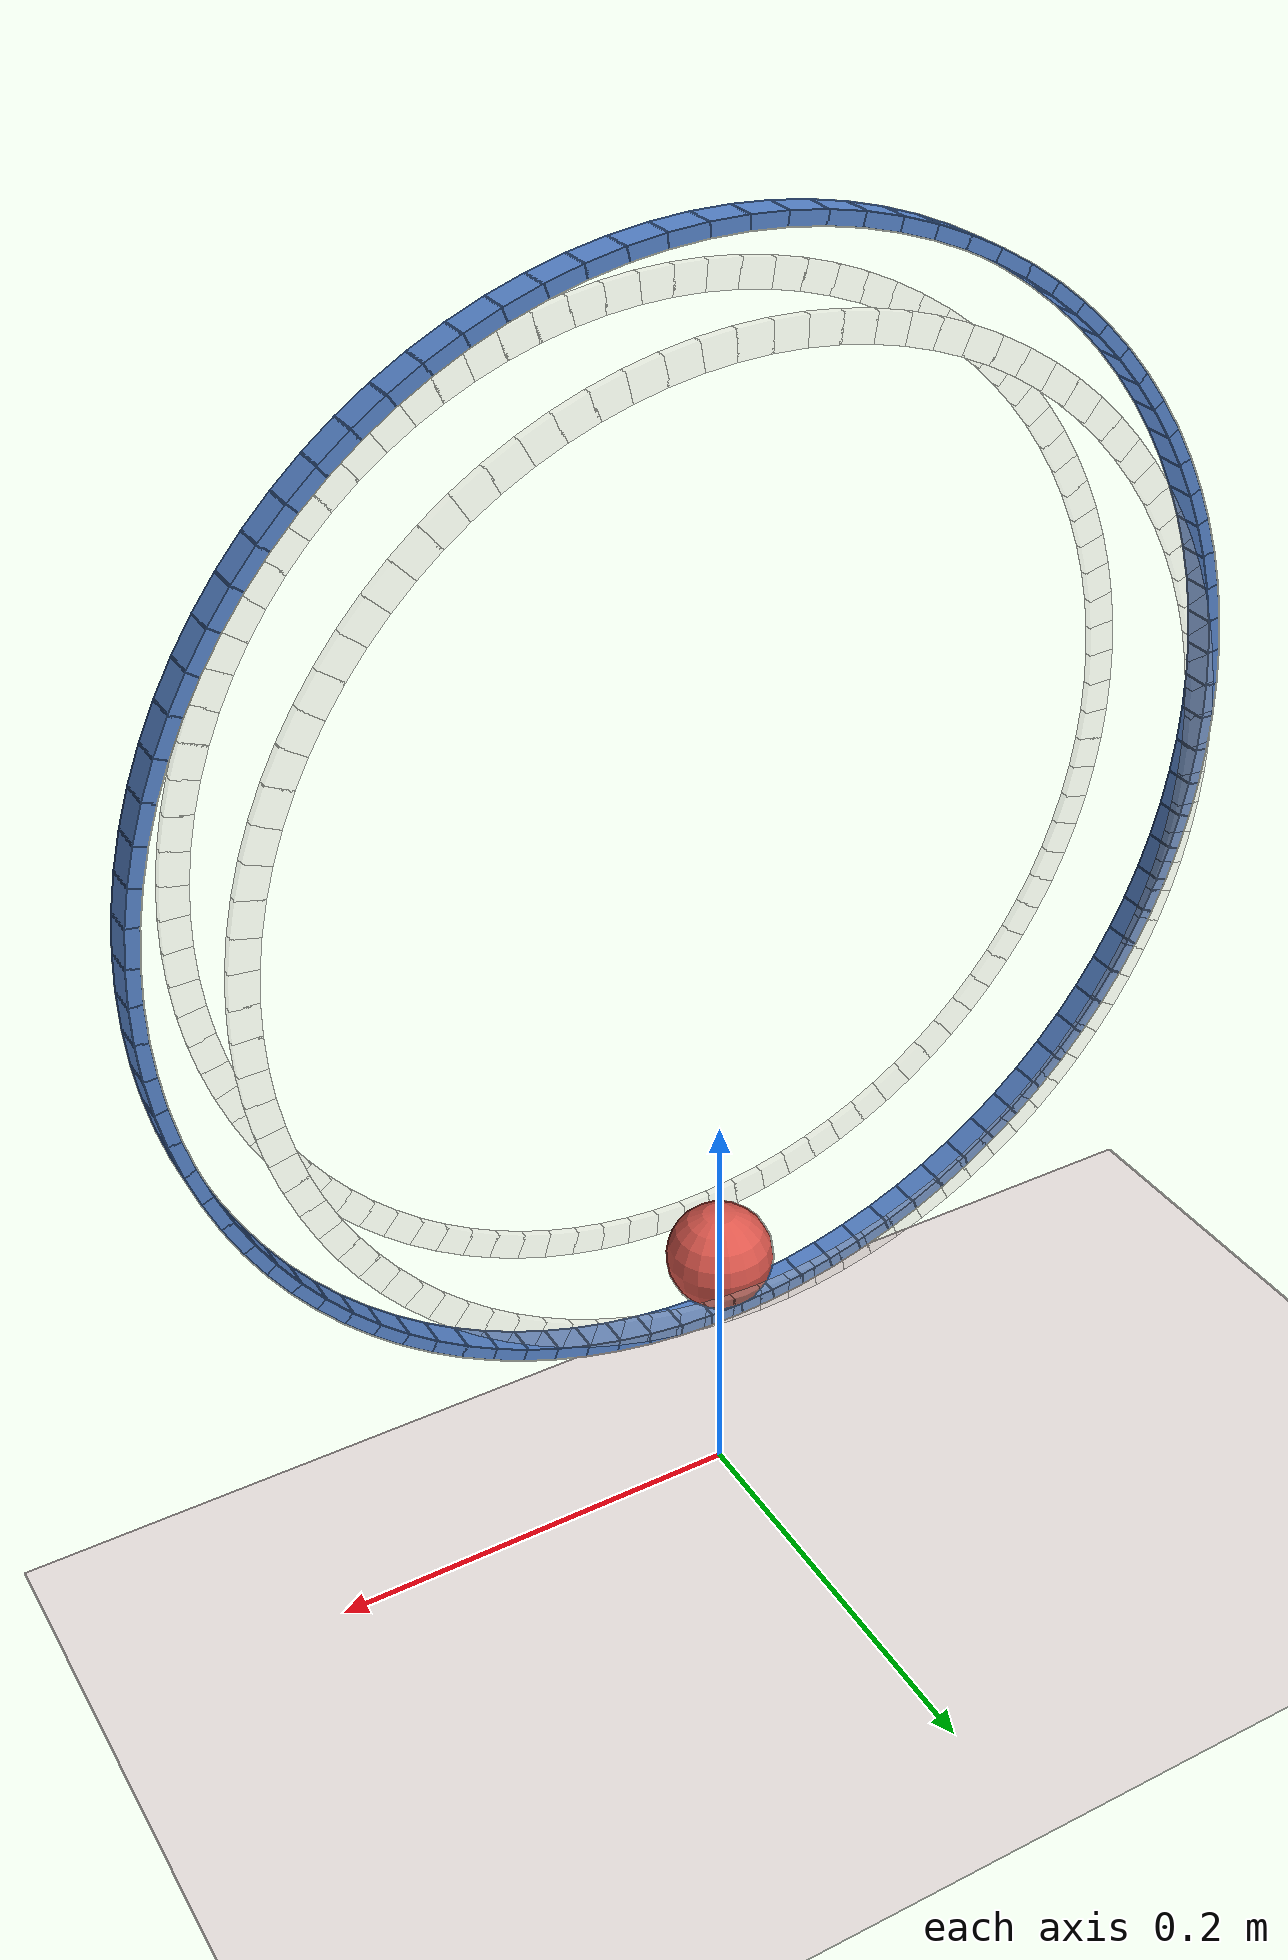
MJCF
<mujoco model="vertical_loop_insufficient_speed">
  <!-- Ball path r=0.222 m inside rail R=0.25 m.
       v_required ≈ 3.50 m/s;  v0 = 3.0 m/s. -->
  <compiler angle="radian" coordinate="local" autolimits="true"/>
  <option timestep="0.001" gravity="0 0 -9.81" integrator="implicitfast"
          impratio="5" cone="elliptic"/>

  <visual>
    <headlight diffuse="0 0 0" ambient="0.50 0.48 0.55" specular="0 0 0"/>
    <rgba haze="0.94 0.91 0.90 1"/>
    <global azimuth="120" elevation="-15" offwidth="1920" offheight="1080" fovy="38"/>
    <quality shadowsize="8192" offsamples="8"/>
    <map shadowclip="6" shadowscale="0.7"/>
  </visual>

  <asset>
    <texture type="skybox" builtin="flat"
             rgb1="0.74 0.68 0.86" rgb2="0.74 0.68 0.86"
             width="512" height="512" mark="none" markrgb="0 0 0"/>
    <material name="floor_mat" rgba="0.94 0.91 0.90 1" specular="0" shininess="0"/>
    <material name="track_blue" rgba="0.34 0.52 0.80 1" specular="0.20" shininess="0.25"/>
    <material name="rail_glass" rgba="0.85 0.82 0.78 0.28" specular="0.25" shininess="0.35"/>
    <material name="bob_red"  rgba="0.86 0.34 0.30 1" specular="0.40" shininess="0.40"/>
  </asset>

  <default>
    <geom solref="0.004 1" solimp="0.95 0.99 0.001"/>
  </default>

  <worldbody>
    <light pos="0 0 12" dir="-0.30 0.55 -1" directional="true" castshadow="true"
           diffuse="0.85 0.82 0.78" specular="0.15 0.15 0.15"/>
    <light pos="0 0 8" dir="0.40 -0.30 -1" directional="true" castshadow="false"
           diffuse="0.28 0.28 0.34" specular="0 0 0"/>

    <geom name="floor" type="plane" size="40 40 0.1" material="floor_mat"/>

    <!-- 96 inner-wall segments, R=0.25 m, centre z=0.35 m -->
    <geom name="rail_000" type="box" pos="0.00000 0 0.09700" euler="0 -0.00000 0" size="0.00859 0.00700 0.00300" material="track_blue" friction="0.008 0.0008 0.0001"/>
    <geom name="rail_001" type="box" pos="0.01655 0 0.09754" euler="0 -0.06545 0" size="0.00859 0.00700 0.00300" material="track_blue" friction="0.008 0.0008 0.0001"/>
    <geom name="rail_002" type="box" pos="0.03302 0 0.09916" euler="0 -0.13090 0" size="0.00859 0.00700 0.00300" material="track_blue" friction="0.008 0.0008 0.0001"/>
    <geom name="rail_003" type="box" pos="0.04936 0 0.10186" euler="0 -0.19635 0" size="0.00859 0.00700 0.00300" material="track_blue" friction="0.008 0.0008 0.0001"/>
    <geom name="rail_004" type="box" pos="0.06548 0 0.10562" euler="0 -0.26180 0" size="0.00859 0.00700 0.00300" material="track_blue" friction="0.008 0.0008 0.0001"/>
    <geom name="rail_005" type="box" pos="0.08132 0 0.11043" euler="0 -0.32725 0" size="0.00859 0.00700 0.00300" material="track_blue" friction="0.008 0.0008 0.0001"/>
    <geom name="rail_006" type="box" pos="0.09682 0 0.11626" euler="0 -0.39270 0" size="0.00859 0.00700 0.00300" material="track_blue" friction="0.008 0.0008 0.0001"/>
    <geom name="rail_007" type="box" pos="0.11190 0 0.12309" euler="0 -0.45815 0" size="0.00859 0.00700 0.00300" material="track_blue" friction="0.008 0.0008 0.0001"/>
    <geom name="rail_008" type="box" pos="0.12650 0 0.13090" euler="0 -0.52360 0" size="0.00859 0.00700 0.00300" material="track_blue" friction="0.008 0.0008 0.0001"/>
    <geom name="rail_009" type="box" pos="0.14056 0 0.13964" euler="0 -0.58905 0" size="0.00859 0.00700 0.00300" material="track_blue" friction="0.008 0.0008 0.0001"/>
    <geom name="rail_010" type="box" pos="0.15402 0 0.14928" euler="0 -0.65450 0" size="0.00859 0.00700 0.00300" material="track_blue" friction="0.008 0.0008 0.0001"/>
    <geom name="rail_011" type="box" pos="0.16681 0 0.15978" euler="0 -0.71995 0" size="0.00859 0.00700 0.00300" material="track_blue" friction="0.008 0.0008 0.0001"/>
    <geom name="rail_012" type="box" pos="0.17890 0 0.17110" euler="0 -0.78540 0" size="0.00859 0.00700 0.00300" material="track_blue" friction="0.008 0.0008 0.0001"/>
    <geom name="rail_013" type="box" pos="0.19022 0 0.18319" euler="0 -0.85085 0" size="0.00859 0.00700 0.00300" material="track_blue" friction="0.008 0.0008 0.0001"/>
    <geom name="rail_014" type="box" pos="0.20072 0 0.19598" euler="0 -0.91630 0" size="0.00859 0.00700 0.00300" material="track_blue" friction="0.008 0.0008 0.0001"/>
    <geom name="rail_015" type="box" pos="0.21036 0 0.20944" euler="0 -0.98175 0" size="0.00859 0.00700 0.00300" material="track_blue" friction="0.008 0.0008 0.0001"/>
    <geom name="rail_016" type="box" pos="0.21910 0 0.22350" euler="0 -1.04720 0" size="0.00859 0.00700 0.00300" material="track_blue" friction="0.008 0.0008 0.0001"/>
    <geom name="rail_017" type="box" pos="0.22691 0 0.23810" euler="0 -1.11265 0" size="0.00859 0.00700 0.00300" material="track_blue" friction="0.008 0.0008 0.0001"/>
    <geom name="rail_018" type="box" pos="0.23374 0 0.25318" euler="0 -1.17810 0" size="0.00859 0.00700 0.00300" material="track_blue" friction="0.008 0.0008 0.0001"/>
    <geom name="rail_019" type="box" pos="0.23957 0 0.26868" euler="0 -1.24355 0" size="0.00859 0.00700 0.00300" material="track_blue" friction="0.008 0.0008 0.0001"/>
    <geom name="rail_020" type="box" pos="0.24438 0 0.28452" euler="0 -1.30900 0" size="0.00859 0.00700 0.00300" material="track_blue" friction="0.008 0.0008 0.0001"/>
    <geom name="rail_021" type="box" pos="0.24814 0 0.30064" euler="0 -1.37445 0" size="0.00859 0.00700 0.00300" material="track_blue" friction="0.008 0.0008 0.0001"/>
    <geom name="rail_022" type="box" pos="0.25084 0 0.31698" euler="0 -1.43990 0" size="0.00859 0.00700 0.00300" material="track_blue" friction="0.008 0.0008 0.0001"/>
    <geom name="rail_023" type="box" pos="0.25246 0 0.33345" euler="0 -1.50535 0" size="0.00859 0.00700 0.00300" material="track_blue" friction="0.008 0.0008 0.0001"/>
    <geom name="rail_024" type="box" pos="0.25300 0 0.35000" euler="0 -1.57080 0" size="0.00859 0.00700 0.00300" material="track_blue" friction="0.008 0.0008 0.0001"/>
    <geom name="rail_025" type="box" pos="0.25246 0 0.36655" euler="0 -1.63625 0" size="0.00859 0.00700 0.00300" material="track_blue" friction="0.008 0.0008 0.0001"/>
    <geom name="rail_026" type="box" pos="0.25084 0 0.38302" euler="0 -1.70170 0" size="0.00859 0.00700 0.00300" material="track_blue" friction="0.008 0.0008 0.0001"/>
    <geom name="rail_027" type="box" pos="0.24814 0 0.39936" euler="0 -1.76715 0" size="0.00859 0.00700 0.00300" material="track_blue" friction="0.008 0.0008 0.0001"/>
    <geom name="rail_028" type="box" pos="0.24438 0 0.41548" euler="0 -1.83260 0" size="0.00859 0.00700 0.00300" material="track_blue" friction="0.008 0.0008 0.0001"/>
    <geom name="rail_029" type="box" pos="0.23957 0 0.43132" euler="0 -1.89805 0" size="0.00859 0.00700 0.00300" material="track_blue" friction="0.008 0.0008 0.0001"/>
    <geom name="rail_030" type="box" pos="0.23374 0 0.44682" euler="0 -1.96350 0" size="0.00859 0.00700 0.00300" material="track_blue" friction="0.008 0.0008 0.0001"/>
    <geom name="rail_031" type="box" pos="0.22691 0 0.46190" euler="0 -2.02895 0" size="0.00859 0.00700 0.00300" material="track_blue" friction="0.008 0.0008 0.0001"/>
    <geom name="rail_032" type="box" pos="0.21910 0 0.47650" euler="0 -2.09440 0" size="0.00859 0.00700 0.00300" material="track_blue" friction="0.008 0.0008 0.0001"/>
    <geom name="rail_033" type="box" pos="0.21036 0 0.49056" euler="0 -2.15984 0" size="0.00859 0.00700 0.00300" material="track_blue" friction="0.008 0.0008 0.0001"/>
    <geom name="rail_034" type="box" pos="0.20072 0 0.50402" euler="0 -2.22529 0" size="0.00859 0.00700 0.00300" material="track_blue" friction="0.008 0.0008 0.0001"/>
    <geom name="rail_035" type="box" pos="0.19022 0 0.51681" euler="0 -2.29074 0" size="0.00859 0.00700 0.00300" material="track_blue" friction="0.008 0.0008 0.0001"/>
    <geom name="rail_036" type="box" pos="0.17890 0 0.52890" euler="0 -2.35619 0" size="0.00859 0.00700 0.00300" material="track_blue" friction="0.008 0.0008 0.0001"/>
    <geom name="rail_037" type="box" pos="0.16681 0 0.54022" euler="0 -2.42164 0" size="0.00859 0.00700 0.00300" material="track_blue" friction="0.008 0.0008 0.0001"/>
    <geom name="rail_038" type="box" pos="0.15402 0 0.55072" euler="0 -2.48709 0" size="0.00859 0.00700 0.00300" material="track_blue" friction="0.008 0.0008 0.0001"/>
    <geom name="rail_039" type="box" pos="0.14056 0 0.56036" euler="0 -2.55254 0" size="0.00859 0.00700 0.00300" material="track_blue" friction="0.008 0.0008 0.0001"/>
    <geom name="rail_040" type="box" pos="0.12650 0 0.56910" euler="0 -2.61799 0" size="0.00859 0.00700 0.00300" material="track_blue" friction="0.008 0.0008 0.0001"/>
    <geom name="rail_041" type="box" pos="0.11190 0 0.57691" euler="0 -2.68344 0" size="0.00859 0.00700 0.00300" material="track_blue" friction="0.008 0.0008 0.0001"/>
    <geom name="rail_042" type="box" pos="0.09682 0 0.58374" euler="0 -2.74889 0" size="0.00859 0.00700 0.00300" material="track_blue" friction="0.008 0.0008 0.0001"/>
    <geom name="rail_043" type="box" pos="0.08132 0 0.58957" euler="0 -2.81434 0" size="0.00859 0.00700 0.00300" material="track_blue" friction="0.008 0.0008 0.0001"/>
    <geom name="rail_044" type="box" pos="0.06548 0 0.59438" euler="0 -2.87979 0" size="0.00859 0.00700 0.00300" material="track_blue" friction="0.008 0.0008 0.0001"/>
    <geom name="rail_045" type="box" pos="0.04936 0 0.59814" euler="0 -2.94524 0" size="0.00859 0.00700 0.00300" material="track_blue" friction="0.008 0.0008 0.0001"/>
    <geom name="rail_046" type="box" pos="0.03302 0 0.60084" euler="0 -3.01069 0" size="0.00859 0.00700 0.00300" material="track_blue" friction="0.008 0.0008 0.0001"/>
    <geom name="rail_047" type="box" pos="0.01655 0 0.60246" euler="0 -3.07614 0" size="0.00859 0.00700 0.00300" material="track_blue" friction="0.008 0.0008 0.0001"/>
    <geom name="rail_048" type="box" pos="0.00000 0 0.60300" euler="0 -3.14159 0" size="0.00859 0.00700 0.00300" material="track_blue" friction="0.008 0.0008 0.0001"/>
    <geom name="rail_049" type="box" pos="-0.01655 0 0.60246" euler="0 -3.20704 0" size="0.00859 0.00700 0.00300" material="track_blue" friction="0.008 0.0008 0.0001"/>
    <geom name="rail_050" type="box" pos="-0.03302 0 0.60084" euler="0 -3.27249 0" size="0.00859 0.00700 0.00300" material="track_blue" friction="0.008 0.0008 0.0001"/>
    <geom name="rail_051" type="box" pos="-0.04936 0 0.59814" euler="0 -3.33794 0" size="0.00859 0.00700 0.00300" material="track_blue" friction="0.008 0.0008 0.0001"/>
    <geom name="rail_052" type="box" pos="-0.06548 0 0.59438" euler="0 -3.40339 0" size="0.00859 0.00700 0.00300" material="track_blue" friction="0.008 0.0008 0.0001"/>
    <geom name="rail_053" type="box" pos="-0.08132 0 0.58957" euler="0 -3.46884 0" size="0.00859 0.00700 0.00300" material="track_blue" friction="0.008 0.0008 0.0001"/>
    <geom name="rail_054" type="box" pos="-0.09682 0 0.58374" euler="0 -3.53429 0" size="0.00859 0.00700 0.00300" material="track_blue" friction="0.008 0.0008 0.0001"/>
    <geom name="rail_055" type="box" pos="-0.11190 0 0.57691" euler="0 -3.59974 0" size="0.00859 0.00700 0.00300" material="track_blue" friction="0.008 0.0008 0.0001"/>
    <geom name="rail_056" type="box" pos="-0.12650 0 0.56910" euler="0 -3.66519 0" size="0.00859 0.00700 0.00300" material="track_blue" friction="0.008 0.0008 0.0001"/>
    <geom name="rail_057" type="box" pos="-0.14056 0 0.56036" euler="0 -3.73064 0" size="0.00859 0.00700 0.00300" material="track_blue" friction="0.008 0.0008 0.0001"/>
    <geom name="rail_058" type="box" pos="-0.15402 0 0.55072" euler="0 -3.79609 0" size="0.00859 0.00700 0.00300" material="track_blue" friction="0.008 0.0008 0.0001"/>
    <geom name="rail_059" type="box" pos="-0.16681 0 0.54022" euler="0 -3.86154 0" size="0.00859 0.00700 0.00300" material="track_blue" friction="0.008 0.0008 0.0001"/>
    <geom name="rail_060" type="box" pos="-0.17890 0 0.52890" euler="0 -3.92699 0" size="0.00859 0.00700 0.00300" material="track_blue" friction="0.008 0.0008 0.0001"/>
    <geom name="rail_061" type="box" pos="-0.19022 0 0.51681" euler="0 -3.99244 0" size="0.00859 0.00700 0.00300" material="track_blue" friction="0.008 0.0008 0.0001"/>
    <geom name="rail_062" type="box" pos="-0.20072 0 0.50402" euler="0 -4.05789 0" size="0.00859 0.00700 0.00300" material="track_blue" friction="0.008 0.0008 0.0001"/>
    <geom name="rail_063" type="box" pos="-0.21036 0 0.49056" euler="0 -4.12334 0" size="0.00859 0.00700 0.00300" material="track_blue" friction="0.008 0.0008 0.0001"/>
    <geom name="rail_064" type="box" pos="-0.21910 0 0.47650" euler="0 -4.18879 0" size="0.00859 0.00700 0.00300" material="track_blue" friction="0.008 0.0008 0.0001"/>
    <geom name="rail_065" type="box" pos="-0.22691 0 0.46190" euler="0 -4.25424 0" size="0.00859 0.00700 0.00300" material="track_blue" friction="0.008 0.0008 0.0001"/>
    <geom name="rail_066" type="box" pos="-0.23374 0 0.44682" euler="0 -4.31969 0" size="0.00859 0.00700 0.00300" material="track_blue" friction="0.008 0.0008 0.0001"/>
    <geom name="rail_067" type="box" pos="-0.23957 0 0.43132" euler="0 -4.38514 0" size="0.00859 0.00700 0.00300" material="track_blue" friction="0.008 0.0008 0.0001"/>
    <geom name="rail_068" type="box" pos="-0.24438 0 0.41548" euler="0 -4.45059 0" size="0.00859 0.00700 0.00300" material="track_blue" friction="0.008 0.0008 0.0001"/>
    <geom name="rail_069" type="box" pos="-0.24814 0 0.39936" euler="0 -4.51604 0" size="0.00859 0.00700 0.00300" material="track_blue" friction="0.008 0.0008 0.0001"/>
    <geom name="rail_070" type="box" pos="-0.25084 0 0.38302" euler="0 -4.58149 0" size="0.00859 0.00700 0.00300" material="track_blue" friction="0.008 0.0008 0.0001"/>
    <geom name="rail_071" type="box" pos="-0.25246 0 0.36655" euler="0 -4.64694 0" size="0.00859 0.00700 0.00300" material="track_blue" friction="0.008 0.0008 0.0001"/>
    <geom name="rail_072" type="box" pos="-0.25300 0 0.35000" euler="0 -4.71239 0" size="0.00859 0.00700 0.00300" material="track_blue" friction="0.008 0.0008 0.0001"/>
    <geom name="rail_073" type="box" pos="-0.25246 0 0.33345" euler="0 -4.77784 0" size="0.00859 0.00700 0.00300" material="track_blue" friction="0.008 0.0008 0.0001"/>
    <geom name="rail_074" type="box" pos="-0.25084 0 0.31698" euler="0 -4.84329 0" size="0.00859 0.00700 0.00300" material="track_blue" friction="0.008 0.0008 0.0001"/>
    <geom name="rail_075" type="box" pos="-0.24814 0 0.30064" euler="0 -4.90874 0" size="0.00859 0.00700 0.00300" material="track_blue" friction="0.008 0.0008 0.0001"/>
    <geom name="rail_076" type="box" pos="-0.24438 0 0.28452" euler="0 -4.97419 0" size="0.00859 0.00700 0.00300" material="track_blue" friction="0.008 0.0008 0.0001"/>
    <geom name="rail_077" type="box" pos="-0.23957 0 0.26868" euler="0 -5.03964 0" size="0.00859 0.00700 0.00300" material="track_blue" friction="0.008 0.0008 0.0001"/>
    <geom name="rail_078" type="box" pos="-0.23374 0 0.25318" euler="0 -5.10509 0" size="0.00859 0.00700 0.00300" material="track_blue" friction="0.008 0.0008 0.0001"/>
    <geom name="rail_079" type="box" pos="-0.22691 0 0.23810" euler="0 -5.17054 0" size="0.00859 0.00700 0.00300" material="track_blue" friction="0.008 0.0008 0.0001"/>
    <geom name="rail_080" type="box" pos="-0.21910 0 0.22350" euler="0 -5.23599 0" size="0.00859 0.00700 0.00300" material="track_blue" friction="0.008 0.0008 0.0001"/>
    <geom name="rail_081" type="box" pos="-0.21036 0 0.20944" euler="0 -5.30144 0" size="0.00859 0.00700 0.00300" material="track_blue" friction="0.008 0.0008 0.0001"/>
    <geom name="rail_082" type="box" pos="-0.20072 0 0.19598" euler="0 -5.36689 0" size="0.00859 0.00700 0.00300" material="track_blue" friction="0.008 0.0008 0.0001"/>
    <geom name="rail_083" type="box" pos="-0.19022 0 0.18319" euler="0 -5.43234 0" size="0.00859 0.00700 0.00300" material="track_blue" friction="0.008 0.0008 0.0001"/>
    <geom name="rail_084" type="box" pos="-0.17890 0 0.17110" euler="0 -5.49779 0" size="0.00859 0.00700 0.00300" material="track_blue" friction="0.008 0.0008 0.0001"/>
    <geom name="rail_085" type="box" pos="-0.16681 0 0.15978" euler="0 -5.56324 0" size="0.00859 0.00700 0.00300" material="track_blue" friction="0.008 0.0008 0.0001"/>
    <geom name="rail_086" type="box" pos="-0.15402 0 0.14928" euler="0 -5.62869 0" size="0.00859 0.00700 0.00300" material="track_blue" friction="0.008 0.0008 0.0001"/>
    <geom name="rail_087" type="box" pos="-0.14056 0 0.13964" euler="0 -5.69414 0" size="0.00859 0.00700 0.00300" material="track_blue" friction="0.008 0.0008 0.0001"/>
    <geom name="rail_088" type="box" pos="-0.12650 0 0.13090" euler="0 -5.75959 0" size="0.00859 0.00700 0.00300" material="track_blue" friction="0.008 0.0008 0.0001"/>
    <geom name="rail_089" type="box" pos="-0.11190 0 0.12309" euler="0 -5.82504 0" size="0.00859 0.00700 0.00300" material="track_blue" friction="0.008 0.0008 0.0001"/>
    <geom name="rail_090" type="box" pos="-0.09682 0 0.11626" euler="0 -5.89049 0" size="0.00859 0.00700 0.00300" material="track_blue" friction="0.008 0.0008 0.0001"/>
    <geom name="rail_091" type="box" pos="-0.08132 0 0.11043" euler="0 -5.95594 0" size="0.00859 0.00700 0.00300" material="track_blue" friction="0.008 0.0008 0.0001"/>
    <geom name="rail_092" type="box" pos="-0.06548 0 0.10562" euler="0 -6.02139 0" size="0.00859 0.00700 0.00300" material="track_blue" friction="0.008 0.0008 0.0001"/>
    <geom name="rail_093" type="box" pos="-0.04936 0 0.10186" euler="0 -6.08684 0" size="0.00859 0.00700 0.00300" material="track_blue" friction="0.008 0.0008 0.0001"/>
    <geom name="rail_094" type="box" pos="-0.03302 0 0.09916" euler="0 -6.15229 0" size="0.00859 0.00700 0.00300" material="track_blue" friction="0.008 0.0008 0.0001"/>
    <geom name="rail_095" type="box" pos="-0.01655 0 0.09754" euler="0 -6.21774 0" size="0.00859 0.00700 0.00300" material="track_blue" friction="0.008 0.0008 0.0001"/>

    <geom name="guide_000_m" type="box" pos="0.00726 -0.03500 0.12812" euler="0 -0.03272 0" size="0.00763 0.0020 0.0060" material="rail_glass" contype="0" conaffinity="0"/>
    <geom name="guide_000_p" type="box" pos="0.00726 0.03500 0.12812" euler="0 -0.03272 0" size="0.00763 0.0020 0.0060" material="rail_glass" contype="0" conaffinity="0"/>
    <geom name="guide_001_m" type="box" pos="0.02176 -0.03500 0.12907" euler="0 -0.09817 0" size="0.00763 0.0020 0.0060" material="rail_glass" contype="0" conaffinity="0"/>
    <geom name="guide_001_p" type="box" pos="0.02176 0.03500 0.12907" euler="0 -0.09817 0" size="0.00763 0.0020 0.0060" material="rail_glass" contype="0" conaffinity="0"/>
    <geom name="guide_002_m" type="box" pos="0.03616 -0.03500 0.13097" euler="0 -0.16362 0" size="0.00763 0.0020 0.0060" material="rail_glass" contype="0" conaffinity="0"/>
    <geom name="guide_002_p" type="box" pos="0.03616 0.03500 0.13097" euler="0 -0.16362 0" size="0.00763 0.0020 0.0060" material="rail_glass" contype="0" conaffinity="0"/>
    <geom name="guide_003_m" type="box" pos="0.05041 -0.03500 0.13380" euler="0 -0.22907 0" size="0.00763 0.0020 0.0060" material="rail_glass" contype="0" conaffinity="0"/>
    <geom name="guide_003_p" type="box" pos="0.05041 0.03500 0.13380" euler="0 -0.22907 0" size="0.00763 0.0020 0.0060" material="rail_glass" contype="0" conaffinity="0"/>
    <geom name="guide_004_m" type="box" pos="0.06444 -0.03500 0.13756" euler="0 -0.29452 0" size="0.00763 0.0020 0.0060" material="rail_glass" contype="0" conaffinity="0"/>
    <geom name="guide_004_p" type="box" pos="0.06444 0.03500 0.13756" euler="0 -0.29452 0" size="0.00763 0.0020 0.0060" material="rail_glass" contype="0" conaffinity="0"/>
    <geom name="guide_005_m" type="box" pos="0.07820 -0.03500 0.14223" euler="0 -0.35997 0" size="0.00763 0.0020 0.0060" material="rail_glass" contype="0" conaffinity="0"/>
    <geom name="guide_005_p" type="box" pos="0.07820 0.03500 0.14223" euler="0 -0.35997 0" size="0.00763 0.0020 0.0060" material="rail_glass" contype="0" conaffinity="0"/>
    <geom name="guide_006_m" type="box" pos="0.09162 -0.03500 0.14779" euler="0 -0.42542 0" size="0.00763 0.0020 0.0060" material="rail_glass" contype="0" conaffinity="0"/>
    <geom name="guide_006_p" type="box" pos="0.09162 0.03500 0.14779" euler="0 -0.42542 0" size="0.00763 0.0020 0.0060" material="rail_glass" contype="0" conaffinity="0"/>
    <geom name="guide_007_m" type="box" pos="0.10465 -0.03500 0.15421" euler="0 -0.49087 0" size="0.00763 0.0020 0.0060" material="rail_glass" contype="0" conaffinity="0"/>
    <geom name="guide_007_p" type="box" pos="0.10465 0.03500 0.15421" euler="0 -0.49087 0" size="0.00763 0.0020 0.0060" material="rail_glass" contype="0" conaffinity="0"/>
    <geom name="guide_008_m" type="box" pos="0.11723 -0.03500 0.16148" euler="0 -0.55632 0" size="0.00763 0.0020 0.0060" material="rail_glass" contype="0" conaffinity="0"/>
    <geom name="guide_008_p" type="box" pos="0.11723 0.03500 0.16148" euler="0 -0.55632 0" size="0.00763 0.0020 0.0060" material="rail_glass" contype="0" conaffinity="0"/>
    <geom name="guide_009_m" type="box" pos="0.12931 -0.03500 0.16955" euler="0 -0.62177 0" size="0.00763 0.0020 0.0060" material="rail_glass" contype="0" conaffinity="0"/>
    <geom name="guide_009_p" type="box" pos="0.12931 0.03500 0.16955" euler="0 -0.62177 0" size="0.00763 0.0020 0.0060" material="rail_glass" contype="0" conaffinity="0"/>
    <geom name="guide_010_m" type="box" pos="0.14084 -0.03500 0.17839" euler="0 -0.68722 0" size="0.00763 0.0020 0.0060" material="rail_glass" contype="0" conaffinity="0"/>
    <geom name="guide_010_p" type="box" pos="0.14084 0.03500 0.17839" euler="0 -0.68722 0" size="0.00763 0.0020 0.0060" material="rail_glass" contype="0" conaffinity="0"/>
    <geom name="guide_011_m" type="box" pos="0.15176 -0.03500 0.18797" euler="0 -0.75267 0" size="0.00763 0.0020 0.0060" material="rail_glass" contype="0" conaffinity="0"/>
    <geom name="guide_011_p" type="box" pos="0.15176 0.03500 0.18797" euler="0 -0.75267 0" size="0.00763 0.0020 0.0060" material="rail_glass" contype="0" conaffinity="0"/>
    <geom name="guide_012_m" type="box" pos="0.16203 -0.03500 0.19824" euler="0 -0.81812 0" size="0.00763 0.0020 0.0060" material="rail_glass" contype="0" conaffinity="0"/>
    <geom name="guide_012_p" type="box" pos="0.16203 0.03500 0.19824" euler="0 -0.81812 0" size="0.00763 0.0020 0.0060" material="rail_glass" contype="0" conaffinity="0"/>
    <geom name="guide_013_m" type="box" pos="0.17161 -0.03500 0.20916" euler="0 -0.88357 0" size="0.00763 0.0020 0.0060" material="rail_glass" contype="0" conaffinity="0"/>
    <geom name="guide_013_p" type="box" pos="0.17161 0.03500 0.20916" euler="0 -0.88357 0" size="0.00763 0.0020 0.0060" material="rail_glass" contype="0" conaffinity="0"/>
    <geom name="guide_014_m" type="box" pos="0.18045 -0.03500 0.22069" euler="0 -0.94902 0" size="0.00763 0.0020 0.0060" material="rail_glass" contype="0" conaffinity="0"/>
    <geom name="guide_014_p" type="box" pos="0.18045 0.03500 0.22069" euler="0 -0.94902 0" size="0.00763 0.0020 0.0060" material="rail_glass" contype="0" conaffinity="0"/>
    <geom name="guide_015_m" type="box" pos="0.18852 -0.03500 0.23277" euler="0 -1.01447 0" size="0.00763 0.0020 0.0060" material="rail_glass" contype="0" conaffinity="0"/>
    <geom name="guide_015_p" type="box" pos="0.18852 0.03500 0.23277" euler="0 -1.01447 0" size="0.00763 0.0020 0.0060" material="rail_glass" contype="0" conaffinity="0"/>
    <geom name="guide_016_m" type="box" pos="0.19579 -0.03500 0.24535" euler="0 -1.07992 0" size="0.00763 0.0020 0.0060" material="rail_glass" contype="0" conaffinity="0"/>
    <geom name="guide_016_p" type="box" pos="0.19579 0.03500 0.24535" euler="0 -1.07992 0" size="0.00763 0.0020 0.0060" material="rail_glass" contype="0" conaffinity="0"/>
    <geom name="guide_017_m" type="box" pos="0.20221 -0.03500 0.25838" euler="0 -1.14537 0" size="0.00763 0.0020 0.0060" material="rail_glass" contype="0" conaffinity="0"/>
    <geom name="guide_017_p" type="box" pos="0.20221 0.03500 0.25838" euler="0 -1.14537 0" size="0.00763 0.0020 0.0060" material="rail_glass" contype="0" conaffinity="0"/>
    <geom name="guide_018_m" type="box" pos="0.20777 -0.03500 0.27180" euler="0 -1.21082 0" size="0.00763 0.0020 0.0060" material="rail_glass" contype="0" conaffinity="0"/>
    <geom name="guide_018_p" type="box" pos="0.20777 0.03500 0.27180" euler="0 -1.21082 0" size="0.00763 0.0020 0.0060" material="rail_glass" contype="0" conaffinity="0"/>
    <geom name="guide_019_m" type="box" pos="0.21244 -0.03500 0.28556" euler="0 -1.27627 0" size="0.00763 0.0020 0.0060" material="rail_glass" contype="0" conaffinity="0"/>
    <geom name="guide_019_p" type="box" pos="0.21244 0.03500 0.28556" euler="0 -1.27627 0" size="0.00763 0.0020 0.0060" material="rail_glass" contype="0" conaffinity="0"/>
    <geom name="guide_020_m" type="box" pos="0.21620 -0.03500 0.29959" euler="0 -1.34172 0" size="0.00763 0.0020 0.0060" material="rail_glass" contype="0" conaffinity="0"/>
    <geom name="guide_020_p" type="box" pos="0.21620 0.03500 0.29959" euler="0 -1.34172 0" size="0.00763 0.0020 0.0060" material="rail_glass" contype="0" conaffinity="0"/>
    <geom name="guide_021_m" type="box" pos="0.21903 -0.03500 0.31384" euler="0 -1.40717 0" size="0.00763 0.0020 0.0060" material="rail_glass" contype="0" conaffinity="0"/>
    <geom name="guide_021_p" type="box" pos="0.21903 0.03500 0.31384" euler="0 -1.40717 0" size="0.00763 0.0020 0.0060" material="rail_glass" contype="0" conaffinity="0"/>
    <geom name="guide_022_m" type="box" pos="0.22093 -0.03500 0.32824" euler="0 -1.47262 0" size="0.00763 0.0020 0.0060" material="rail_glass" contype="0" conaffinity="0"/>
    <geom name="guide_022_p" type="box" pos="0.22093 0.03500 0.32824" euler="0 -1.47262 0" size="0.00763 0.0020 0.0060" material="rail_glass" contype="0" conaffinity="0"/>
    <geom name="guide_023_m" type="box" pos="0.22188 -0.03500 0.34274" euler="0 -1.53807 0" size="0.00763 0.0020 0.0060" material="rail_glass" contype="0" conaffinity="0"/>
    <geom name="guide_023_p" type="box" pos="0.22188 0.03500 0.34274" euler="0 -1.53807 0" size="0.00763 0.0020 0.0060" material="rail_glass" contype="0" conaffinity="0"/>
    <geom name="guide_024_m" type="box" pos="0.22188 -0.03500 0.35726" euler="0 -1.60352 0" size="0.00763 0.0020 0.0060" material="rail_glass" contype="0" conaffinity="0"/>
    <geom name="guide_024_p" type="box" pos="0.22188 0.03500 0.35726" euler="0 -1.60352 0" size="0.00763 0.0020 0.0060" material="rail_glass" contype="0" conaffinity="0"/>
    <geom name="guide_025_m" type="box" pos="0.22093 -0.03500 0.37176" euler="0 -1.66897 0" size="0.00763 0.0020 0.0060" material="rail_glass" contype="0" conaffinity="0"/>
    <geom name="guide_025_p" type="box" pos="0.22093 0.03500 0.37176" euler="0 -1.66897 0" size="0.00763 0.0020 0.0060" material="rail_glass" contype="0" conaffinity="0"/>
    <geom name="guide_026_m" type="box" pos="0.21903 -0.03500 0.38616" euler="0 -1.73442 0" size="0.00763 0.0020 0.0060" material="rail_glass" contype="0" conaffinity="0"/>
    <geom name="guide_026_p" type="box" pos="0.21903 0.03500 0.38616" euler="0 -1.73442 0" size="0.00763 0.0020 0.0060" material="rail_glass" contype="0" conaffinity="0"/>
    <geom name="guide_027_m" type="box" pos="0.21620 -0.03500 0.40041" euler="0 -1.79987 0" size="0.00763 0.0020 0.0060" material="rail_glass" contype="0" conaffinity="0"/>
    <geom name="guide_027_p" type="box" pos="0.21620 0.03500 0.40041" euler="0 -1.79987 0" size="0.00763 0.0020 0.0060" material="rail_glass" contype="0" conaffinity="0"/>
    <geom name="guide_028_m" type="box" pos="0.21244 -0.03500 0.41444" euler="0 -1.86532 0" size="0.00763 0.0020 0.0060" material="rail_glass" contype="0" conaffinity="0"/>
    <geom name="guide_028_p" type="box" pos="0.21244 0.03500 0.41444" euler="0 -1.86532 0" size="0.00763 0.0020 0.0060" material="rail_glass" contype="0" conaffinity="0"/>
    <geom name="guide_029_m" type="box" pos="0.20777 -0.03500 0.42820" euler="0 -1.93077 0" size="0.00763 0.0020 0.0060" material="rail_glass" contype="0" conaffinity="0"/>
    <geom name="guide_029_p" type="box" pos="0.20777 0.03500 0.42820" euler="0 -1.93077 0" size="0.00763 0.0020 0.0060" material="rail_glass" contype="0" conaffinity="0"/>
    <geom name="guide_030_m" type="box" pos="0.20221 -0.03500 0.44162" euler="0 -1.99622 0" size="0.00763 0.0020 0.0060" material="rail_glass" contype="0" conaffinity="0"/>
    <geom name="guide_030_p" type="box" pos="0.20221 0.03500 0.44162" euler="0 -1.99622 0" size="0.00763 0.0020 0.0060" material="rail_glass" contype="0" conaffinity="0"/>
    <geom name="guide_031_m" type="box" pos="0.19579 -0.03500 0.45465" euler="0 -2.06167 0" size="0.00763 0.0020 0.0060" material="rail_glass" contype="0" conaffinity="0"/>
    <geom name="guide_031_p" type="box" pos="0.19579 0.03500 0.45465" euler="0 -2.06167 0" size="0.00763 0.0020 0.0060" material="rail_glass" contype="0" conaffinity="0"/>
    <geom name="guide_032_m" type="box" pos="0.18852 -0.03500 0.46723" euler="0 -2.12712 0" size="0.00763 0.0020 0.0060" material="rail_glass" contype="0" conaffinity="0"/>
    <geom name="guide_032_p" type="box" pos="0.18852 0.03500 0.46723" euler="0 -2.12712 0" size="0.00763 0.0020 0.0060" material="rail_glass" contype="0" conaffinity="0"/>
    <geom name="guide_033_m" type="box" pos="0.18045 -0.03500 0.47931" euler="0 -2.19257 0" size="0.00763 0.0020 0.0060" material="rail_glass" contype="0" conaffinity="0"/>
    <geom name="guide_033_p" type="box" pos="0.18045 0.03500 0.47931" euler="0 -2.19257 0" size="0.00763 0.0020 0.0060" material="rail_glass" contype="0" conaffinity="0"/>
    <geom name="guide_034_m" type="box" pos="0.17161 -0.03500 0.49084" euler="0 -2.25802 0" size="0.00763 0.0020 0.0060" material="rail_glass" contype="0" conaffinity="0"/>
    <geom name="guide_034_p" type="box" pos="0.17161 0.03500 0.49084" euler="0 -2.25802 0" size="0.00763 0.0020 0.0060" material="rail_glass" contype="0" conaffinity="0"/>
    <geom name="guide_035_m" type="box" pos="0.16203 -0.03500 0.50176" euler="0 -2.32347 0" size="0.00763 0.0020 0.0060" material="rail_glass" contype="0" conaffinity="0"/>
    <geom name="guide_035_p" type="box" pos="0.16203 0.03500 0.50176" euler="0 -2.32347 0" size="0.00763 0.0020 0.0060" material="rail_glass" contype="0" conaffinity="0"/>
    <geom name="guide_036_m" type="box" pos="0.15176 -0.03500 0.51203" euler="0 -2.38892 0" size="0.00763 0.0020 0.0060" material="rail_glass" contype="0" conaffinity="0"/>
    <geom name="guide_036_p" type="box" pos="0.15176 0.03500 0.51203" euler="0 -2.38892 0" size="0.00763 0.0020 0.0060" material="rail_glass" contype="0" conaffinity="0"/>
    <geom name="guide_037_m" type="box" pos="0.14084 -0.03500 0.52161" euler="0 -2.45437 0" size="0.00763 0.0020 0.0060" material="rail_glass" contype="0" conaffinity="0"/>
    <geom name="guide_037_p" type="box" pos="0.14084 0.03500 0.52161" euler="0 -2.45437 0" size="0.00763 0.0020 0.0060" material="rail_glass" contype="0" conaffinity="0"/>
    <geom name="guide_038_m" type="box" pos="0.12931 -0.03500 0.53045" euler="0 -2.51982 0" size="0.00763 0.0020 0.0060" material="rail_glass" contype="0" conaffinity="0"/>
    <geom name="guide_038_p" type="box" pos="0.12931 0.03500 0.53045" euler="0 -2.51982 0" size="0.00763 0.0020 0.0060" material="rail_glass" contype="0" conaffinity="0"/>
    <geom name="guide_039_m" type="box" pos="0.11723 -0.03500 0.53852" euler="0 -2.58527 0" size="0.00763 0.0020 0.0060" material="rail_glass" contype="0" conaffinity="0"/>
    <geom name="guide_039_p" type="box" pos="0.11723 0.03500 0.53852" euler="0 -2.58527 0" size="0.00763 0.0020 0.0060" material="rail_glass" contype="0" conaffinity="0"/>
    <geom name="guide_040_m" type="box" pos="0.10465 -0.03500 0.54579" euler="0 -2.65072 0" size="0.00763 0.0020 0.0060" material="rail_glass" contype="0" conaffinity="0"/>
    <geom name="guide_040_p" type="box" pos="0.10465 0.03500 0.54579" euler="0 -2.65072 0" size="0.00763 0.0020 0.0060" material="rail_glass" contype="0" conaffinity="0"/>
    <geom name="guide_041_m" type="box" pos="0.09162 -0.03500 0.55221" euler="0 -2.71617 0" size="0.00763 0.0020 0.0060" material="rail_glass" contype="0" conaffinity="0"/>
    <geom name="guide_041_p" type="box" pos="0.09162 0.03500 0.55221" euler="0 -2.71617 0" size="0.00763 0.0020 0.0060" material="rail_glass" contype="0" conaffinity="0"/>
    <geom name="guide_042_m" type="box" pos="0.07820 -0.03500 0.55777" euler="0 -2.78162 0" size="0.00763 0.0020 0.0060" material="rail_glass" contype="0" conaffinity="0"/>
    <geom name="guide_042_p" type="box" pos="0.07820 0.03500 0.55777" euler="0 -2.78162 0" size="0.00763 0.0020 0.0060" material="rail_glass" contype="0" conaffinity="0"/>
    <geom name="guide_043_m" type="box" pos="0.06444 -0.03500 0.56244" euler="0 -2.84707 0" size="0.00763 0.0020 0.0060" material="rail_glass" contype="0" conaffinity="0"/>
    <geom name="guide_043_p" type="box" pos="0.06444 0.03500 0.56244" euler="0 -2.84707 0" size="0.00763 0.0020 0.0060" material="rail_glass" contype="0" conaffinity="0"/>
    <geom name="guide_044_m" type="box" pos="0.05041 -0.03500 0.56620" euler="0 -2.91252 0" size="0.00763 0.0020 0.0060" material="rail_glass" contype="0" conaffinity="0"/>
    <geom name="guide_044_p" type="box" pos="0.05041 0.03500 0.56620" euler="0 -2.91252 0" size="0.00763 0.0020 0.0060" material="rail_glass" contype="0" conaffinity="0"/>
    <geom name="guide_045_m" type="box" pos="0.03616 -0.03500 0.56903" euler="0 -2.97797 0" size="0.00763 0.0020 0.0060" material="rail_glass" contype="0" conaffinity="0"/>
    <geom name="guide_045_p" type="box" pos="0.03616 0.03500 0.56903" euler="0 -2.97797 0" size="0.00763 0.0020 0.0060" material="rail_glass" contype="0" conaffinity="0"/>
    <geom name="guide_046_m" type="box" pos="0.02176 -0.03500 0.57093" euler="0 -3.04342 0" size="0.00763 0.0020 0.0060" material="rail_glass" contype="0" conaffinity="0"/>
    <geom name="guide_046_p" type="box" pos="0.02176 0.03500 0.57093" euler="0 -3.04342 0" size="0.00763 0.0020 0.0060" material="rail_glass" contype="0" conaffinity="0"/>
    <geom name="guide_047_m" type="box" pos="0.00726 -0.03500 0.57188" euler="0 -3.10887 0" size="0.00763 0.0020 0.0060" material="rail_glass" contype="0" conaffinity="0"/>
    <geom name="guide_047_p" type="box" pos="0.00726 0.03500 0.57188" euler="0 -3.10887 0" size="0.00763 0.0020 0.0060" material="rail_glass" contype="0" conaffinity="0"/>
    <geom name="guide_048_m" type="box" pos="-0.00726 -0.03500 0.57188" euler="0 -3.17432 0" size="0.00763 0.0020 0.0060" material="rail_glass" contype="0" conaffinity="0"/>
    <geom name="guide_048_p" type="box" pos="-0.00726 0.03500 0.57188" euler="0 -3.17432 0" size="0.00763 0.0020 0.0060" material="rail_glass" contype="0" conaffinity="0"/>
    <geom name="guide_049_m" type="box" pos="-0.02176 -0.03500 0.57093" euler="0 -3.23977 0" size="0.00763 0.0020 0.0060" material="rail_glass" contype="0" conaffinity="0"/>
    <geom name="guide_049_p" type="box" pos="-0.02176 0.03500 0.57093" euler="0 -3.23977 0" size="0.00763 0.0020 0.0060" material="rail_glass" contype="0" conaffinity="0"/>
    <geom name="guide_050_m" type="box" pos="-0.03616 -0.03500 0.56903" euler="0 -3.30522 0" size="0.00763 0.0020 0.0060" material="rail_glass" contype="0" conaffinity="0"/>
    <geom name="guide_050_p" type="box" pos="-0.03616 0.03500 0.56903" euler="0 -3.30522 0" size="0.00763 0.0020 0.0060" material="rail_glass" contype="0" conaffinity="0"/>
    <geom name="guide_051_m" type="box" pos="-0.05041 -0.03500 0.56620" euler="0 -3.37067 0" size="0.00763 0.0020 0.0060" material="rail_glass" contype="0" conaffinity="0"/>
    <geom name="guide_051_p" type="box" pos="-0.05041 0.03500 0.56620" euler="0 -3.37067 0" size="0.00763 0.0020 0.0060" material="rail_glass" contype="0" conaffinity="0"/>
    <geom name="guide_052_m" type="box" pos="-0.06444 -0.03500 0.56244" euler="0 -3.43612 0" size="0.00763 0.0020 0.0060" material="rail_glass" contype="0" conaffinity="0"/>
    <geom name="guide_052_p" type="box" pos="-0.06444 0.03500 0.56244" euler="0 -3.43612 0" size="0.00763 0.0020 0.0060" material="rail_glass" contype="0" conaffinity="0"/>
    <geom name="guide_053_m" type="box" pos="-0.07820 -0.03500 0.55777" euler="0 -3.50157 0" size="0.00763 0.0020 0.0060" material="rail_glass" contype="0" conaffinity="0"/>
    <geom name="guide_053_p" type="box" pos="-0.07820 0.03500 0.55777" euler="0 -3.50157 0" size="0.00763 0.0020 0.0060" material="rail_glass" contype="0" conaffinity="0"/>
    <geom name="guide_054_m" type="box" pos="-0.09162 -0.03500 0.55221" euler="0 -3.56702 0" size="0.00763 0.0020 0.0060" material="rail_glass" contype="0" conaffinity="0"/>
    <geom name="guide_054_p" type="box" pos="-0.09162 0.03500 0.55221" euler="0 -3.56702 0" size="0.00763 0.0020 0.0060" material="rail_glass" contype="0" conaffinity="0"/>
    <geom name="guide_055_m" type="box" pos="-0.10465 -0.03500 0.54579" euler="0 -3.63247 0" size="0.00763 0.0020 0.0060" material="rail_glass" contype="0" conaffinity="0"/>
    <geom name="guide_055_p" type="box" pos="-0.10465 0.03500 0.54579" euler="0 -3.63247 0" size="0.00763 0.0020 0.0060" material="rail_glass" contype="0" conaffinity="0"/>
    <geom name="guide_056_m" type="box" pos="-0.11723 -0.03500 0.53852" euler="0 -3.69792 0" size="0.00763 0.0020 0.0060" material="rail_glass" contype="0" conaffinity="0"/>
    <geom name="guide_056_p" type="box" pos="-0.11723 0.03500 0.53852" euler="0 -3.69792 0" size="0.00763 0.0020 0.0060" material="rail_glass" contype="0" conaffinity="0"/>
    <geom name="guide_057_m" type="box" pos="-0.12931 -0.03500 0.53045" euler="0 -3.76337 0" size="0.00763 0.0020 0.0060" material="rail_glass" contype="0" conaffinity="0"/>
    <geom name="guide_057_p" type="box" pos="-0.12931 0.03500 0.53045" euler="0 -3.76337 0" size="0.00763 0.0020 0.0060" material="rail_glass" contype="0" conaffinity="0"/>
    <geom name="guide_058_m" type="box" pos="-0.14084 -0.03500 0.52161" euler="0 -3.82882 0" size="0.00763 0.0020 0.0060" material="rail_glass" contype="0" conaffinity="0"/>
    <geom name="guide_058_p" type="box" pos="-0.14084 0.03500 0.52161" euler="0 -3.82882 0" size="0.00763 0.0020 0.0060" material="rail_glass" contype="0" conaffinity="0"/>
    <geom name="guide_059_m" type="box" pos="-0.15176 -0.03500 0.51203" euler="0 -3.89427 0" size="0.00763 0.0020 0.0060" material="rail_glass" contype="0" conaffinity="0"/>
    <geom name="guide_059_p" type="box" pos="-0.15176 0.03500 0.51203" euler="0 -3.89427 0" size="0.00763 0.0020 0.0060" material="rail_glass" contype="0" conaffinity="0"/>
    <geom name="guide_060_m" type="box" pos="-0.16203 -0.03500 0.50176" euler="0 -3.95972 0" size="0.00763 0.0020 0.0060" material="rail_glass" contype="0" conaffinity="0"/>
    <geom name="guide_060_p" type="box" pos="-0.16203 0.03500 0.50176" euler="0 -3.95972 0" size="0.00763 0.0020 0.0060" material="rail_glass" contype="0" conaffinity="0"/>
    <geom name="guide_061_m" type="box" pos="-0.17161 -0.03500 0.49084" euler="0 -4.02517 0" size="0.00763 0.0020 0.0060" material="rail_glass" contype="0" conaffinity="0"/>
    <geom name="guide_061_p" type="box" pos="-0.17161 0.03500 0.49084" euler="0 -4.02517 0" size="0.00763 0.0020 0.0060" material="rail_glass" contype="0" conaffinity="0"/>
    <geom name="guide_062_m" type="box" pos="-0.18045 -0.03500 0.47931" euler="0 -4.09062 0" size="0.00763 0.0020 0.0060" material="rail_glass" contype="0" conaffinity="0"/>
    <geom name="guide_062_p" type="box" pos="-0.18045 0.03500 0.47931" euler="0 -4.09062 0" size="0.00763 0.0020 0.0060" material="rail_glass" contype="0" conaffinity="0"/>
    <geom name="guide_063_m" type="box" pos="-0.18852 -0.03500 0.46723" euler="0 -4.15607 0" size="0.00763 0.0020 0.0060" material="rail_glass" contype="0" conaffinity="0"/>
    <geom name="guide_063_p" type="box" pos="-0.18852 0.03500 0.46723" euler="0 -4.15607 0" size="0.00763 0.0020 0.0060" material="rail_glass" contype="0" conaffinity="0"/>
    <geom name="guide_064_m" type="box" pos="-0.19579 -0.03500 0.45465" euler="0 -4.22152 0" size="0.00763 0.0020 0.0060" material="rail_glass" contype="0" conaffinity="0"/>
    <geom name="guide_064_p" type="box" pos="-0.19579 0.03500 0.45465" euler="0 -4.22152 0" size="0.00763 0.0020 0.0060" material="rail_glass" contype="0" conaffinity="0"/>
    <geom name="guide_065_m" type="box" pos="-0.20221 -0.03500 0.44162" euler="0 -4.28696 0" size="0.00763 0.0020 0.0060" material="rail_glass" contype="0" conaffinity="0"/>
    <geom name="guide_065_p" type="box" pos="-0.20221 0.03500 0.44162" euler="0 -4.28696 0" size="0.00763 0.0020 0.0060" material="rail_glass" contype="0" conaffinity="0"/>
    <geom name="guide_066_m" type="box" pos="-0.20777 -0.03500 0.42820" euler="0 -4.35241 0" size="0.00763 0.0020 0.0060" material="rail_glass" contype="0" conaffinity="0"/>
    <geom name="guide_066_p" type="box" pos="-0.20777 0.03500 0.42820" euler="0 -4.35241 0" size="0.00763 0.0020 0.0060" material="rail_glass" contype="0" conaffinity="0"/>
    <geom name="guide_067_m" type="box" pos="-0.21244 -0.03500 0.41444" euler="0 -4.41786 0" size="0.00763 0.0020 0.0060" material="rail_glass" contype="0" conaffinity="0"/>
    <geom name="guide_067_p" type="box" pos="-0.21244 0.03500 0.41444" euler="0 -4.41786 0" size="0.00763 0.0020 0.0060" material="rail_glass" contype="0" conaffinity="0"/>
    <geom name="guide_068_m" type="box" pos="-0.21620 -0.03500 0.40041" euler="0 -4.48331 0" size="0.00763 0.0020 0.0060" material="rail_glass" contype="0" conaffinity="0"/>
    <geom name="guide_068_p" type="box" pos="-0.21620 0.03500 0.40041" euler="0 -4.48331 0" size="0.00763 0.0020 0.0060" material="rail_glass" contype="0" conaffinity="0"/>
    <geom name="guide_069_m" type="box" pos="-0.21903 -0.03500 0.38616" euler="0 -4.54876 0" size="0.00763 0.0020 0.0060" material="rail_glass" contype="0" conaffinity="0"/>
    <geom name="guide_069_p" type="box" pos="-0.21903 0.03500 0.38616" euler="0 -4.54876 0" size="0.00763 0.0020 0.0060" material="rail_glass" contype="0" conaffinity="0"/>
    <geom name="guide_070_m" type="box" pos="-0.22093 -0.03500 0.37176" euler="0 -4.61421 0" size="0.00763 0.0020 0.0060" material="rail_glass" contype="0" conaffinity="0"/>
    <geom name="guide_070_p" type="box" pos="-0.22093 0.03500 0.37176" euler="0 -4.61421 0" size="0.00763 0.0020 0.0060" material="rail_glass" contype="0" conaffinity="0"/>
    <geom name="guide_071_m" type="box" pos="-0.22188 -0.03500 0.35726" euler="0 -4.67966 0" size="0.00763 0.0020 0.0060" material="rail_glass" contype="0" conaffinity="0"/>
    <geom name="guide_071_p" type="box" pos="-0.22188 0.03500 0.35726" euler="0 -4.67966 0" size="0.00763 0.0020 0.0060" material="rail_glass" contype="0" conaffinity="0"/>
    <geom name="guide_072_m" type="box" pos="-0.22188 -0.03500 0.34274" euler="0 -4.74511 0" size="0.00763 0.0020 0.0060" material="rail_glass" contype="0" conaffinity="0"/>
    <geom name="guide_072_p" type="box" pos="-0.22188 0.03500 0.34274" euler="0 -4.74511 0" size="0.00763 0.0020 0.0060" material="rail_glass" contype="0" conaffinity="0"/>
    <geom name="guide_073_m" type="box" pos="-0.22093 -0.03500 0.32824" euler="0 -4.81056 0" size="0.00763 0.0020 0.0060" material="rail_glass" contype="0" conaffinity="0"/>
    <geom name="guide_073_p" type="box" pos="-0.22093 0.03500 0.32824" euler="0 -4.81056 0" size="0.00763 0.0020 0.0060" material="rail_glass" contype="0" conaffinity="0"/>
    <geom name="guide_074_m" type="box" pos="-0.21903 -0.03500 0.31384" euler="0 -4.87601 0" size="0.00763 0.0020 0.0060" material="rail_glass" contype="0" conaffinity="0"/>
    <geom name="guide_074_p" type="box" pos="-0.21903 0.03500 0.31384" euler="0 -4.87601 0" size="0.00763 0.0020 0.0060" material="rail_glass" contype="0" conaffinity="0"/>
    <geom name="guide_075_m" type="box" pos="-0.21620 -0.03500 0.29959" euler="0 -4.94146 0" size="0.00763 0.0020 0.0060" material="rail_glass" contype="0" conaffinity="0"/>
    <geom name="guide_075_p" type="box" pos="-0.21620 0.03500 0.29959" euler="0 -4.94146 0" size="0.00763 0.0020 0.0060" material="rail_glass" contype="0" conaffinity="0"/>
    <geom name="guide_076_m" type="box" pos="-0.21244 -0.03500 0.28556" euler="0 -5.00691 0" size="0.00763 0.0020 0.0060" material="rail_glass" contype="0" conaffinity="0"/>
    <geom name="guide_076_p" type="box" pos="-0.21244 0.03500 0.28556" euler="0 -5.00691 0" size="0.00763 0.0020 0.0060" material="rail_glass" contype="0" conaffinity="0"/>
    <geom name="guide_077_m" type="box" pos="-0.20777 -0.03500 0.27180" euler="0 -5.07236 0" size="0.00763 0.0020 0.0060" material="rail_glass" contype="0" conaffinity="0"/>
    <geom name="guide_077_p" type="box" pos="-0.20777 0.03500 0.27180" euler="0 -5.07236 0" size="0.00763 0.0020 0.0060" material="rail_glass" contype="0" conaffinity="0"/>
    <geom name="guide_078_m" type="box" pos="-0.20221 -0.03500 0.25838" euler="0 -5.13781 0" size="0.00763 0.0020 0.0060" material="rail_glass" contype="0" conaffinity="0"/>
    <geom name="guide_078_p" type="box" pos="-0.20221 0.03500 0.25838" euler="0 -5.13781 0" size="0.00763 0.0020 0.0060" material="rail_glass" contype="0" conaffinity="0"/>
    <geom name="guide_079_m" type="box" pos="-0.19579 -0.03500 0.24535" euler="0 -5.20326 0" size="0.00763 0.0020 0.0060" material="rail_glass" contype="0" conaffinity="0"/>
    <geom name="guide_079_p" type="box" pos="-0.19579 0.03500 0.24535" euler="0 -5.20326 0" size="0.00763 0.0020 0.0060" material="rail_glass" contype="0" conaffinity="0"/>
    <geom name="guide_080_m" type="box" pos="-0.18852 -0.03500 0.23277" euler="0 -5.26871 0" size="0.00763 0.0020 0.0060" material="rail_glass" contype="0" conaffinity="0"/>
    <geom name="guide_080_p" type="box" pos="-0.18852 0.03500 0.23277" euler="0 -5.26871 0" size="0.00763 0.0020 0.0060" material="rail_glass" contype="0" conaffinity="0"/>
    <geom name="guide_081_m" type="box" pos="-0.18045 -0.03500 0.22069" euler="0 -5.33416 0" size="0.00763 0.0020 0.0060" material="rail_glass" contype="0" conaffinity="0"/>
    <geom name="guide_081_p" type="box" pos="-0.18045 0.03500 0.22069" euler="0 -5.33416 0" size="0.00763 0.0020 0.0060" material="rail_glass" contype="0" conaffinity="0"/>
    <geom name="guide_082_m" type="box" pos="-0.17161 -0.03500 0.20916" euler="0 -5.39961 0" size="0.00763 0.0020 0.0060" material="rail_glass" contype="0" conaffinity="0"/>
    <geom name="guide_082_p" type="box" pos="-0.17161 0.03500 0.20916" euler="0 -5.39961 0" size="0.00763 0.0020 0.0060" material="rail_glass" contype="0" conaffinity="0"/>
    <geom name="guide_083_m" type="box" pos="-0.16203 -0.03500 0.19824" euler="0 -5.46506 0" size="0.00763 0.0020 0.0060" material="rail_glass" contype="0" conaffinity="0"/>
    <geom name="guide_083_p" type="box" pos="-0.16203 0.03500 0.19824" euler="0 -5.46506 0" size="0.00763 0.0020 0.0060" material="rail_glass" contype="0" conaffinity="0"/>
    <geom name="guide_084_m" type="box" pos="-0.15176 -0.03500 0.18797" euler="0 -5.53051 0" size="0.00763 0.0020 0.0060" material="rail_glass" contype="0" conaffinity="0"/>
    <geom name="guide_084_p" type="box" pos="-0.15176 0.03500 0.18797" euler="0 -5.53051 0" size="0.00763 0.0020 0.0060" material="rail_glass" contype="0" conaffinity="0"/>
    <geom name="guide_085_m" type="box" pos="-0.14084 -0.03500 0.17839" euler="0 -5.59596 0" size="0.00763 0.0020 0.0060" material="rail_glass" contype="0" conaffinity="0"/>
    <geom name="guide_085_p" type="box" pos="-0.14084 0.03500 0.17839" euler="0 -5.59596 0" size="0.00763 0.0020 0.0060" material="rail_glass" contype="0" conaffinity="0"/>
    <geom name="guide_086_m" type="box" pos="-0.12931 -0.03500 0.16955" euler="0 -5.66141 0" size="0.00763 0.0020 0.0060" material="rail_glass" contype="0" conaffinity="0"/>
    <geom name="guide_086_p" type="box" pos="-0.12931 0.03500 0.16955" euler="0 -5.66141 0" size="0.00763 0.0020 0.0060" material="rail_glass" contype="0" conaffinity="0"/>
    <geom name="guide_087_m" type="box" pos="-0.11723 -0.03500 0.16148" euler="0 -5.72686 0" size="0.00763 0.0020 0.0060" material="rail_glass" contype="0" conaffinity="0"/>
    <geom name="guide_087_p" type="box" pos="-0.11723 0.03500 0.16148" euler="0 -5.72686 0" size="0.00763 0.0020 0.0060" material="rail_glass" contype="0" conaffinity="0"/>
    <geom name="guide_088_m" type="box" pos="-0.10465 -0.03500 0.15421" euler="0 -5.79231 0" size="0.00763 0.0020 0.0060" material="rail_glass" contype="0" conaffinity="0"/>
    <geom name="guide_088_p" type="box" pos="-0.10465 0.03500 0.15421" euler="0 -5.79231 0" size="0.00763 0.0020 0.0060" material="rail_glass" contype="0" conaffinity="0"/>
    <geom name="guide_089_m" type="box" pos="-0.09162 -0.03500 0.14779" euler="0 -5.85776 0" size="0.00763 0.0020 0.0060" material="rail_glass" contype="0" conaffinity="0"/>
    <geom name="guide_089_p" type="box" pos="-0.09162 0.03500 0.14779" euler="0 -5.85776 0" size="0.00763 0.0020 0.0060" material="rail_glass" contype="0" conaffinity="0"/>
    <geom name="guide_090_m" type="box" pos="-0.07820 -0.03500 0.14223" euler="0 -5.92321 0" size="0.00763 0.0020 0.0060" material="rail_glass" contype="0" conaffinity="0"/>
    <geom name="guide_090_p" type="box" pos="-0.07820 0.03500 0.14223" euler="0 -5.92321 0" size="0.00763 0.0020 0.0060" material="rail_glass" contype="0" conaffinity="0"/>
    <geom name="guide_091_m" type="box" pos="-0.06444 -0.03500 0.13756" euler="0 -5.98866 0" size="0.00763 0.0020 0.0060" material="rail_glass" contype="0" conaffinity="0"/>
    <geom name="guide_091_p" type="box" pos="-0.06444 0.03500 0.13756" euler="0 -5.98866 0" size="0.00763 0.0020 0.0060" material="rail_glass" contype="0" conaffinity="0"/>
    <geom name="guide_092_m" type="box" pos="-0.05041 -0.03500 0.13380" euler="0 -6.05411 0" size="0.00763 0.0020 0.0060" material="rail_glass" contype="0" conaffinity="0"/>
    <geom name="guide_092_p" type="box" pos="-0.05041 0.03500 0.13380" euler="0 -6.05411 0" size="0.00763 0.0020 0.0060" material="rail_glass" contype="0" conaffinity="0"/>
    <geom name="guide_093_m" type="box" pos="-0.03616 -0.03500 0.13097" euler="0 -6.11956 0" size="0.00763 0.0020 0.0060" material="rail_glass" contype="0" conaffinity="0"/>
    <geom name="guide_093_p" type="box" pos="-0.03616 0.03500 0.13097" euler="0 -6.11956 0" size="0.00763 0.0020 0.0060" material="rail_glass" contype="0" conaffinity="0"/>
    <geom name="guide_094_m" type="box" pos="-0.02176 -0.03500 0.12907" euler="0 -6.18501 0" size="0.00763 0.0020 0.0060" material="rail_glass" contype="0" conaffinity="0"/>
    <geom name="guide_094_p" type="box" pos="-0.02176 0.03500 0.12907" euler="0 -6.18501 0" size="0.00763 0.0020 0.0060" material="rail_glass" contype="0" conaffinity="0"/>
    <geom name="guide_095_m" type="box" pos="-0.00726 -0.03500 0.12812" euler="0 -6.25046 0" size="0.00763 0.0020 0.0060" material="rail_glass" contype="0" conaffinity="0"/>
    <geom name="guide_095_p" type="box" pos="-0.00726 0.03500 0.12812" euler="0 -6.25046 0" size="0.00763 0.0020 0.0060" material="rail_glass" contype="0" conaffinity="0"/>

    <body name="ball" pos="0 0 0.12800">
      <freejoint name="ball_free"/>
      <geom name="ball_geom" type="sphere" size="0.025" mass="0.05"
            material="bob_red" friction="0.008 0.0008 0.0001"/>
    </body>

    <camera name="cam" pos="0 -1.4 0.35" fovy="42"
            xyaxes="1 0 0  0 0 1"/>
  </worldbody>
</mujoco>
